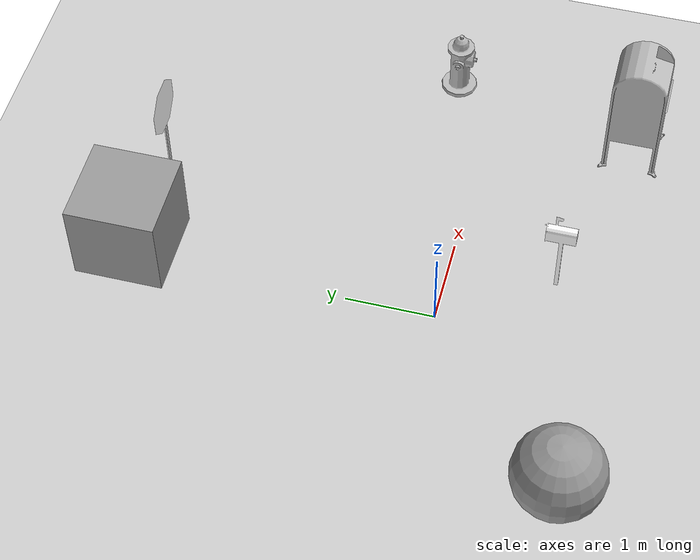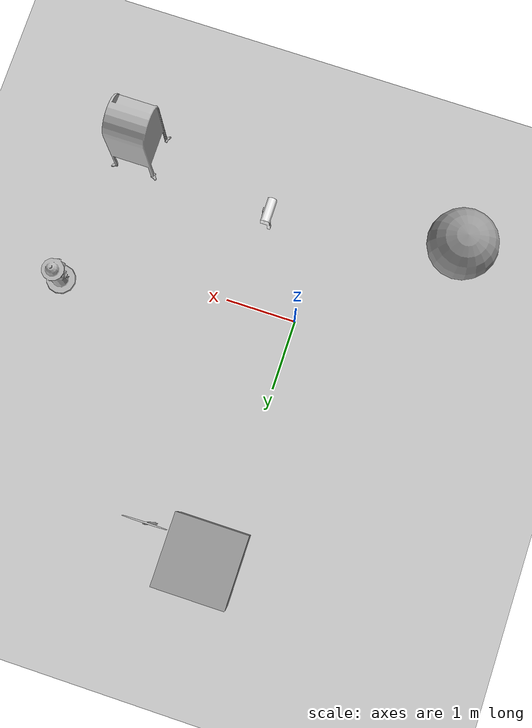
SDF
<sdf version="1.7">
 <world name="default">
  <light name="sun" type="directional">
   <pose>0 0 10 0 -0 0</pose>
   <diffuse>0.8 0.8 0.8 1</diffuse>
   <specular>0.2 0.2 0.2 1</specular>
   <attenuation>
    <range>1000</range>
    <constant>0.9</constant>
    <linear>0.01</linear>
    <quadratic>0.001</quadratic>
   </attenuation>
   <direction>-0.5 0.1 -0.9</direction>
   <spot><inner_angle>0</inner_angle><outer_angle>0</outer_angle><falloff>0</falloff></spot>
  </light>
  <model name="ground_plane">
   <static>1</static>
   <link name="link">
    <collision name="collision">
     <geometry><plane><normal>0 0 1</normal><size>100 100</size></plane></geometry>
     <surface><friction><ode><mu>100</mu><mu2>50</mu2></ode></friction></surface>
    </collision>
    <visual name="visual">
     <cast_shadows>0</cast_shadows>
     <geometry><plane><normal>0 0 1</normal><size>100 100</size></plane></geometry>
     <material>
      <script><uri>file://media/materials/scripts/gazebo.material</uri><name>Gazebo/Grey</name></script>
     </material>
    </visual>
   </link>
  </model>
  <gravity>0 0 -9.8</gravity>
  <magnetic_field>6e-06 2.3e-05 -4.2e-05</magnetic_field>
  <atmosphere type="adiabatic"/>
  <physics type="ode">
   <max_step_size>0.001</max_step_size>
   <real_time_factor>1</real_time_factor>
   <real_time_update_rate>1000</real_time_update_rate>
  </physics>
  <scene><ambient>0.4 0.4 0.4 1</ambient><background>0.7 0.7 0.7 1</background><shadows>1</shadows></scene>
  <audio><device>default</device></audio>
  <spherical_coordinates>
   <surface_model>EARTH_WGS84</surface_model>
   <latitude_deg>0</latitude_deg>
   <longitude_deg>0</longitude_deg>
   <elevation>0</elevation>
   <heading_deg>0</heading_deg>
  </spherical_coordinates>
  <model name="unit_sphere">
   <pose>-1.872 -1.67223 0.5 0 -0 0</pose>
   <link name="link">
    <inertial>
     <mass>1</mass>
     <inertia><ixx>0.1</ixx><ixy>0</ixy><ixz>0</ixz><iyy>0.1</iyy><iyz>0</iyz><izz>0.1</izz></inertia>
    </inertial>
    <collision name="collision"><geometry><sphere><radius>0.5</radius></sphere></geometry></collision>
    <visual name="visual">
     <geometry><sphere><radius>0.5</radius></sphere></geometry>
     <material>
      <script><name>Gazebo/Grey</name><uri>file://media/materials/scripts/gazebo.material</uri></script>
     </material>
    </visual>
   </link>
  </model>
  <model name="unit_box">
   <pose>0.150655 3.48631 0.5 0 -0 0</pose>
   <link name="link">
    <inertial>
     <mass>1</mass>
     <inertia>
      <ixx>0.166667</ixx>
      <ixy>0</ixy>
      <ixz>0</ixz>
      <iyy>0.166667</iyy>
      <iyz>0</iyz>
      <izz>0.166667</izz>
     </inertia>
    </inertial>
    <collision name="collision"><geometry><box><size>1 1 1</size></box></geometry></collision>
    <visual name="visual">
     <geometry><box><size>1 1 1</size></box></geometry>
     <material>
      <script><name>Gazebo/Grey</name><uri>file://media/materials/scripts/gazebo.material</uri></script>
     </material>
    </visual>
   </link>
  </model>
  <model name="fire_hydrant">
   <static>1</static>
   <link name="link">
    <collision name="collision">
     <geometry><mesh><uri>model://fire_hydrant/meshes/fire_hydrant.dae</uri></mesh></geometry>
    </collision>
    <visual name="visual">
     <geometry><mesh><uri>model://fire_hydrant/meshes/fire_hydrant.dae</uri></mesh></geometry>
    </visual>
   </link>
   <pose>3.28403 0.465442 -0 0 -0 0</pose>
  </model>
  <model name="Mailbox">
   <link name="link">
    <collision name="collision">
     <geometry><mesh><uri>model://mailbox/meshes/mailbox.dae</uri></mesh></geometry>
    </collision>
    <visual name="visual">
     <geometry><mesh><uri>model://mailbox/meshes/mailbox.dae</uri></mesh></geometry>
     <material>
      <script>
       <uri>model://mailbox/materials/scripts</uri>
       <uri>model://mailbox/materials/textures</uri>
       <name>Mailbox/Diffuse</name>
      </script>
     </material>
    </visual>
    <inertial>
     <inertia><ixx>1</ixx><ixy>0</ixy><ixz>0</ixz><iyy>1</iyy><iyz>0</iyz><izz>1</izz></inertia>
     <mass>1</mass>
    </inertial>
   </link>
   <pose>0.770137 -1.18314 -9e-06 -1e-05 -4e-06 -0</pose>
  </model>
  <model name="postbox">
   <static>1</static>
   <link name="link">
    <collision name="collision">
     <geometry><mesh><uri>model://postbox/meshes/postbox.dae</uri></mesh></geometry>
    </collision>
    <visual name="visual"><geometry><mesh><uri>model://postbox/meshes/postbox.dae</uri></mesh></geometry></visual>
   </link>
   <pose>2.86131 -1.67399 0 0 -0 0</pose>
  </model>
  <model name="Stop Sign">
   <static>1</static>
   <link name="link">
    <collision name="collision">
     <geometry><mesh><uri>model://stop_sign/meshes/stop_sign.dae</uri></mesh></geometry>
    </collision>
    <visual name="visual">
     <geometry><mesh><uri>model://stop_sign/meshes/stop_sign.dae</uri></mesh></geometry>
     <material>
      <script>
       <uri>model://stop_sign/materials/scripts</uri>
       <uri>model://stop_sign/materials/textures</uri>
       <name>StopSign/Diffuse</name>
      </script>
     </material>
    </visual>
   </link>
   <pose>0.92128 3.24049 0 0 -0 0</pose>
  </model>
 </world>
</sdf>
